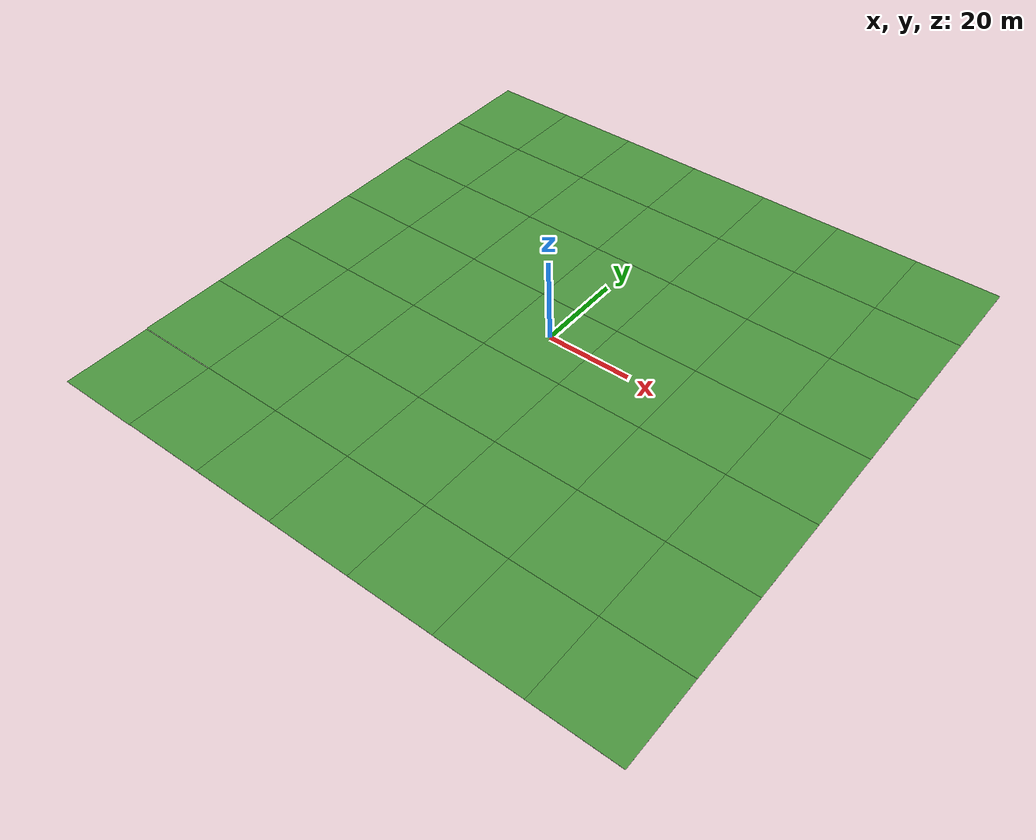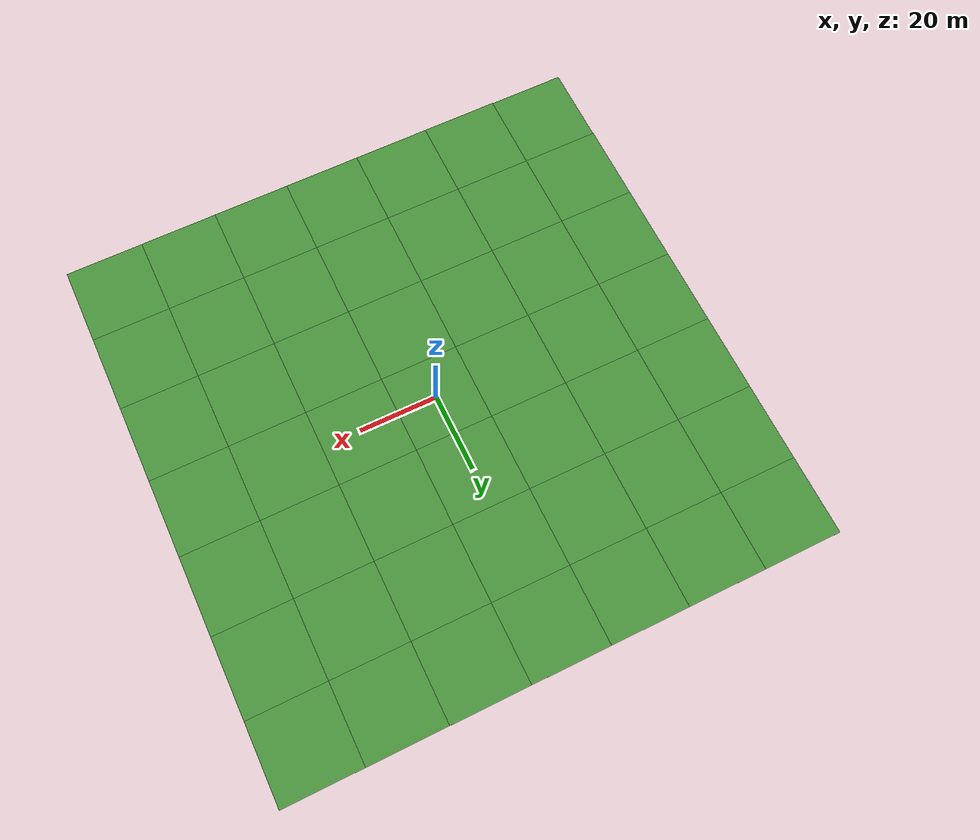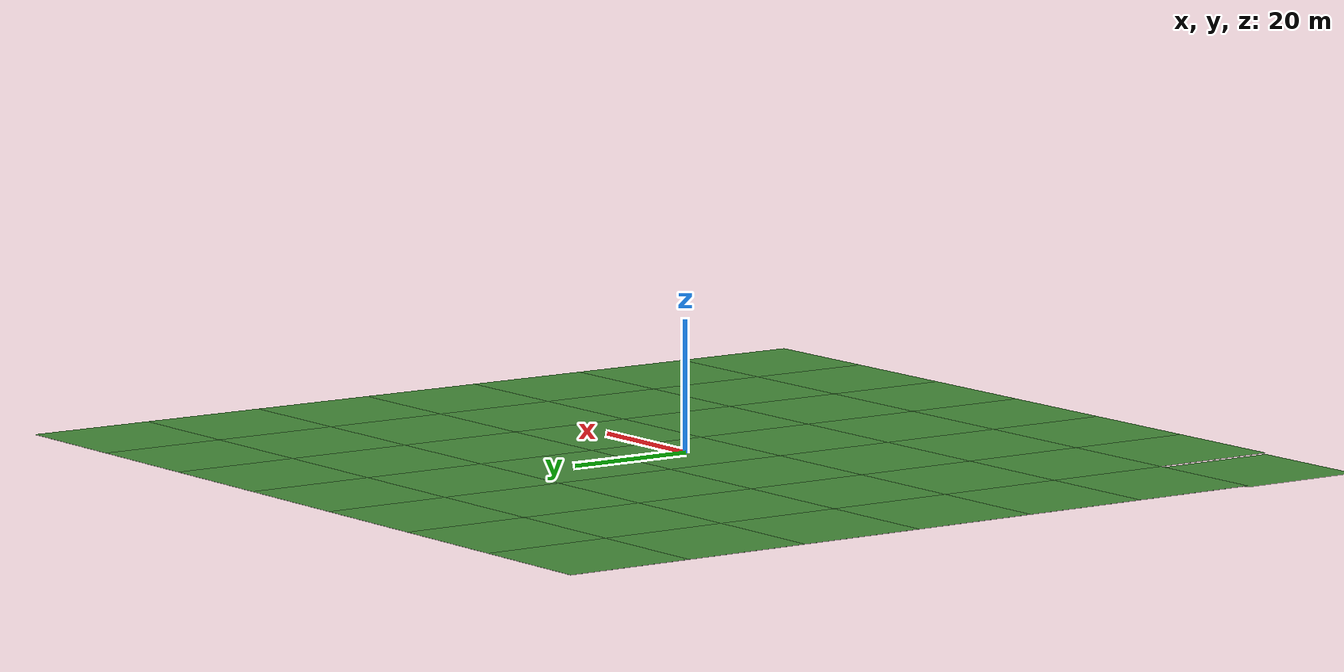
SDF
<?xml version='1.0'?>
<sdf version='1.4'>
  <model name='grass_plane_2'>
    <static>true</static>
    <link name='link'>
      <collision name='collision'>
        <geometry>
          <plane>
            <normal>0 0 1</normal>
            <size>150 150</size>
          </plane>
        </geometry>
        <surface>
          <friction>
            <ode>
              <mu>0.5</mu>
              <mu2>.5</mu2>
            </ode>
          </friction>
        </surface>
      </collision>

      <visual name='visual_00'>
        <pose>-60 -60 0 0 0 0</pose>

        <cast_shadows>false</cast_shadows>
        <geometry>
          <plane>
            <normal>0 0 1</normal>
            <size>20 20</size>
          </plane>
        </geometry>
        <material>
          <script>
            <uri>model://grass_plane_2/materials/scripts</uri>
            <uri>model://grass_plane_2/materials/textures</uri>
            <name>vrc/grass</name>
          </script>
        </material>
      </visual>

      <visual name='visual_01'>
        <pose>-60 -40 0 0 0 0</pose>

        <cast_shadows>false</cast_shadows>
        <geometry>
          <plane>
            <normal>0 0 1</normal>
            <size>20 20</size>
          </plane>
        </geometry>
        <material>
          <script>
            <uri>model://grass_plane_2/materials/scripts</uri>
            <uri>model://grass_plane_2/materials/textures</uri>
            <name>vrc/grass</name>
          </script>
        </material>
      </visual>

      <visual name='visual_02'>
        <pose>-60 -20 0 0 0 0</pose>

        <cast_shadows>false</cast_shadows>
        <geometry>
          <plane>
            <normal>0 0 1</normal>
            <size>20 20</size>
          </plane>
        </geometry>
        <material>
          <script>
            <uri>model://grass_plane_2/materials/scripts</uri>
            <uri>model://grass_plane_2/materials/textures</uri>
            <name>vrc/grass</name>
          </script>
        </material>
      </visual>

      <visual name='visual_03'>
        <pose>-60 0 0 0 0 0</pose>

        <cast_shadows>false</cast_shadows>
        <geometry>
          <plane>
            <normal>0 0 1</normal>
            <size>20 20</size>
          </plane>
        </geometry>
        <material>
          <script>
            <uri>model://grass_plane_2/materials/scripts</uri>
            <uri>model://grass_plane_2/materials/textures</uri>
            <name>vrc/grass</name>
          </script>
        </material>
      </visual>

      <visual name='visual_04'>
        <pose>-60 20 0 0 0 0</pose>

        <cast_shadows>false</cast_shadows>
        <geometry>
          <plane>
            <normal>0 0 1</normal>
            <size>20 20</size>
          </plane>
        </geometry>
        <material>
          <script>
            <uri>model://grass_plane_2/materials/scripts</uri>
            <uri>model://grass_plane_2/materials/textures</uri>
            <name>vrc/grass</name>
          </script>
        </material>
      </visual>

      <visual name='visual_05'>
        <pose>-60 40 0 0 0 0</pose>

        <cast_shadows>false</cast_shadows>
        <geometry>
          <plane>
            <normal>0 0 1</normal>
            <size>20 20</size>
          </plane>
        </geometry>
        <material>
          <script>
            <uri>model://grass_plane_2/materials/scripts</uri>
            <uri>model://grass_plane_2/materials/textures</uri>
            <name>vrc/grass</name>
          </script>
        </material>
      </visual>

      <visual name='visual_06'>
        <pose>-60 60 0 0 0 0</pose>

        <cast_shadows>false</cast_shadows>
        <geometry>
          <plane>
            <normal>0 0 1</normal>
            <size>20 20</size>
          </plane>
        </geometry>
        <material>
          <script>
            <uri>model://grass_plane_2/materials/scripts</uri>
            <uri>model://grass_plane_2/materials/textures</uri>
            <name>vrc/grass</name>
          </script>
        </material>
      </visual>

      <visual name='visual_10'>
        <pose>-40 -60 0 0 0 0</pose>

        <cast_shadows>false</cast_shadows>
        <geometry>
          <plane>
            <normal>0 0 1</normal>
            <size>20 20</size>
          </plane>
        </geometry>
        <material>
          <script>
            <uri>model://grass_plane_2/materials/scripts</uri>
            <uri>model://grass_plane_2/materials/textures</uri>
            <name>vrc/grass</name>
          </script>
        </material>
      </visual>

      <visual name='visual_11'>
        <pose>-40 -40 0 0 0 0</pose>

        <cast_shadows>false</cast_shadows>
        <geometry>
          <plane>
            <normal>0 0 1</normal>
            <size>20 20</size>
          </plane>
        </geometry>
        <material>
          <script>
            <uri>model://grass_plane_2/materials/scripts</uri>
            <uri>model://grass_plane_2/materials/textures</uri>
            <name>vrc/grass</name>
          </script>
        </material>
      </visual>

      <visual name='visual_12'>
        <pose>-40 -20 0 0 0 0</pose>

        <cast_shadows>false</cast_shadows>
        <geometry>
          <plane>
            <normal>0 0 1</normal>
            <size>20 20</size>
          </plane>
        </geometry>
        <material>
          <script>
            <uri>model://grass_plane_2/materials/scripts</uri>
            <uri>model://grass_plane_2/materials/textures</uri>
            <name>vrc/grass</name>
          </script>
        </material>
      </visual>

      <visual name='visual_13'>
        <pose>-40 0 0 0 0 0</pose>

        <cast_shadows>false</cast_shadows>
        <geometry>
          <plane>
            <normal>0 0 1</normal>
            <size>20 20</size>
          </plane>
        </geometry>
        <material>
          <script>
            <uri>model://grass_plane_2/materials/scripts</uri>
            <uri>model://grass_plane_2/materials/textures</uri>
            <name>vrc/grass</name>
          </script>
        </material>
      </visual>

      <visual name='visual_14'>
        <pose>-40 20 0 0 0 0</pose>

        <cast_shadows>false</cast_shadows>
        <geometry>
          <plane>
            <normal>0 0 1</normal>
            <size>20 20</size>
          </plane>
        </geometry>
        <material>
          <script>
            <uri>model://grass_plane_2/materials/scripts</uri>
            <uri>model://grass_plane_2/materials/textures</uri>
            <name>vrc/grass</name>
          </script>
        </material>
      </visual>

      <visual name='visual_15'>
        <pose>-40 40 0 0 0 0</pose>

        <cast_shadows>false</cast_shadows>
        <geometry>
          <plane>
            <normal>0 0 1</normal>
            <size>20 20</size>
          </plane>
        </geometry>
        <material>
          <script>
            <uri>model://grass_plane_2/materials/scripts</uri>
            <uri>model://grass_plane_2/materials/textures</uri>
            <name>vrc/grass</name>
          </script>
        </material>
      </visual>

      <visual name='visual_16'>
        <pose>-40 60 0 0 0 0</pose>

        <cast_shadows>false</cast_shadows>
        <geometry>
          <plane>
            <normal>0 0 1</normal>
            <size>20 20</size>
          </plane>
        </geometry>
        <material>
          <script>
            <uri>model://grass_plane_2/materials/scripts</uri>
            <uri>model://grass_plane_2/materials/textures</uri>
            <name>vrc/grass</name>
          </script>
        </material>
      </visual>

      <visual name='visual_20'>
        <pose>-20 -60 0 0 0 0</pose>

        <cast_shadows>false</cast_shadows>
        <geometry>
          <plane>
            <normal>0 0 1</normal>
            <size>20 20</size>
          </plane>
        </geometry>
        <material>
          <script>
            <uri>model://grass_plane_2/materials/scripts</uri>
            <uri>model://grass_plane_2/materials/textures</uri>
            <name>vrc/grass</name>
          </script>
        </material>
      </visual>

      <visual name='visual_21'>
        <pose>-20 -40 0 0 0 0</pose>

        <cast_shadows>false</cast_shadows>
        <geometry>
          <plane>
            <normal>0 0 1</normal>
            <size>20 20</size>
          </plane>
        </geometry>
        <material>
          <script>
            <uri>model://grass_plane_2/materials/scripts</uri>
            <uri>model://grass_plane_2/materials/textures</uri>
            <name>vrc/grass</name>
          </script>
        </material>
      </visual>

      <visual name='visual_22'>
        <pose>-20 -20 0 0 0 0</pose>

        <cast_shadows>false</cast_shadows>
        <geometry>
          <plane>
            <normal>0 0 1</normal>
            <size>20 20</size>
          </plane>
        </geometry>
        <material>
          <script>
            <uri>model://grass_plane_2/materials/scripts</uri>
            <uri>model://grass_plane_2/materials/textures</uri>
            <name>vrc/grass</name>
          </script>
        </material>
      </visual>

      <visual name='visual_23'>
        <pose>-20 0 0 0 0 0</pose>

        <cast_shadows>false</cast_shadows>
        <geometry>
          <plane>
            <normal>0 0 1</normal>
            <size>20 20</size>
          </plane>
        </geometry>
        <material>
          <script>
            <uri>model://grass_plane_2/materials/scripts</uri>
            <uri>model://grass_plane_2/materials/textures</uri>
            <name>vrc/grass</name>
          </script>
        </material>
      </visual>

      <visual name='visual_24'>
        <pose>-20 20 0 0 0 0</pose>

        <cast_shadows>false</cast_shadows>
        <geometry>
          <plane>
            <normal>0 0 1</normal>
            <size>20 20</size>
          </plane>
        </geometry>
        <material>
          <script>
            <uri>model://grass_plane_2/materials/scripts</uri>
            <uri>model://grass_plane_2/materials/textures</uri>
            <name>vrc/grass</name>
          </script>
        </material>
      </visual>

      <visual name='visual_25'>
        <pose>-20 40 0 0 0 0</pose>

        <cast_shadows>false</cast_shadows>
        <geometry>
          <plane>
            <normal>0 0 1</normal>
            <size>20 20</size>
          </plane>
        </geometry>
        <material>
          <script>
            <uri>model://grass_plane_2/materials/scripts</uri>
            <uri>model://grass_plane_2/materials/textures</uri>
            <name>vrc/grass</name>
          </script>
        </material>
      </visual>

      <visual name='visual_26'>
        <pose>-20 60 0 0 0 0</pose>

        <cast_shadows>false</cast_shadows>
        <geometry>
          <plane>
            <normal>0 0 1</normal>
            <size>20 20</size>
          </plane>
        </geometry>
        <material>
          <script>
            <uri>model://grass_plane_2/materials/scripts</uri>
            <uri>model://grass_plane_2/materials/textures</uri>
            <name>vrc/grass</name>
          </script>
        </material>
      </visual>

      <visual name='visual_40'>
        <pose>0 -60 0 0 0 0</pose>

        <cast_shadows>false</cast_shadows>
        <geometry>
          <plane>
            <normal>0 0 1</normal>
            <size>20 20</size>
          </plane>
        </geometry>
        <material>
          <script>
            <uri>model://grass_plane_2/materials/scripts</uri>
            <uri>model://grass_plane_2/materials/textures</uri>
            <name>vrc/grass</name>
          </script>
        </material>
      </visual>

      <visual name='visual_41'>
        <pose>0 -40 0 0 0 0</pose>

        <cast_shadows>false</cast_shadows>
        <geometry>
          <plane>
            <normal>0 0 1</normal>
            <size>20 20</size>
          </plane>
        </geometry>
        <material>
          <script>
            <uri>model://grass_plane_2/materials/scripts</uri>
            <uri>model://grass_plane_2/materials/textures</uri>
            <name>vrc/grass</name>
          </script>
        </material>
      </visual>

      <visual name='visual_42'>
        <pose>0 -20 0 0 0 0</pose>

        <cast_shadows>false</cast_shadows>
        <geometry>
          <plane>
            <normal>0 0 1</normal>
            <size>20 20</size>
          </plane>
        </geometry>
        <material>
          <script>
            <uri>model://grass_plane_2/materials/scripts</uri>
            <uri>model://grass_plane_2/materials/textures</uri>
            <name>vrc/grass</name>
          </script>
        </material>
      </visual>

      <visual name='visual_43'>
        <pose>0 0 0 0 0 0</pose>

        <cast_shadows>false</cast_shadows>
        <geometry>
          <plane>
            <normal>0 0 1</normal>
            <size>20 20</size>
          </plane>
        </geometry>
        <material>
          <script>
            <uri>model://grass_plane_2/materials/scripts</uri>
            <uri>model://grass_plane_2/materials/textures</uri>
            <name>vrc/grass</name>
          </script>
        </material>
      </visual>

      <visual name='visual_44'>
        <pose>0 20 0 0 0 0</pose>

        <cast_shadows>false</cast_shadows>
        <geometry>
          <plane>
            <normal>0 0 1</normal>
            <size>20 20</size>
          </plane>
        </geometry>
        <material>
          <script>
            <uri>model://grass_plane_2/materials/scripts</uri>
            <uri>model://grass_plane_2/materials/textures</uri>
            <name>vrc/grass</name>
          </script>
        </material>
      </visual>

      <visual name='visual_45'>
        <pose>-0 40 0 0 0 0</pose>

        <cast_shadows>false</cast_shadows>
        <geometry>
          <plane>
            <normal>0 0 1</normal>
            <size>20 20</size>
          </plane>
        </geometry>
        <material>
          <script>
            <uri>model://grass_plane_2/materials/scripts</uri>
            <uri>model://grass_plane_2/materials/textures</uri>
            <name>vrc/grass</name>
          </script>
        </material>
      </visual>

      <visual name='visual_46'>
        <pose>-0 60 0 0 0 0</pose>

        <cast_shadows>false</cast_shadows>
        <geometry>
          <plane>
            <normal>0 0 1</normal>
            <size>20 20</size>
          </plane>
        </geometry>
        <material>
          <script>
            <uri>model://grass_plane_2/materials/scripts</uri>
            <uri>model://grass_plane_2/materials/textures</uri>
            <name>vrc/grass</name>
          </script>
        </material>
      </visual>

      <visual name='visual_50'>
        <pose>20 -60 0 0 0 0</pose>

        <cast_shadows>false</cast_shadows>
        <geometry>
          <plane>
            <normal>0 0 1</normal>
            <size>20 20</size>
          </plane>
        </geometry>
        <material>
          <script>
            <uri>model://grass_plane_2/materials/scripts</uri>
            <uri>model://grass_plane_2/materials/textures</uri>
            <name>vrc/grass</name>
          </script>
        </material>
      </visual>

      <visual name='visual_51'>
        <pose>20 -40 0 0 0 0</pose>

        <cast_shadows>false</cast_shadows>
        <geometry>
          <plane>
            <normal>0 0 1</normal>
            <size>20 20</size>
          </plane>
        </geometry>
        <material>
          <script>
            <uri>model://grass_plane_2/materials/scripts</uri>
            <uri>model://grass_plane_2/materials/textures</uri>
            <name>vrc/grass</name>
          </script>
        </material>
      </visual>

      <visual name='visual_52'>
        <pose>20 -20 0 0 0 0</pose>

        <cast_shadows>false</cast_shadows>
        <geometry>
          <plane>
            <normal>0 0 1</normal>
            <size>20 20</size>
          </plane>
        </geometry>
        <material>
          <script>
            <uri>model://grass_plane_2/materials/scripts</uri>
            <uri>model://grass_plane_2/materials/textures</uri>
            <name>vrc/grass</name>
          </script>
        </material>
      </visual>

      <visual name='visual_53'>
        <pose>20 0 0 0 0 0</pose>

        <cast_shadows>false</cast_shadows>
        <geometry>
          <plane>
            <normal>0 0 1</normal>
            <size>20 20</size>
          </plane>
        </geometry>
        <material>
          <script>
            <uri>model://grass_plane_2/materials/scripts</uri>
            <uri>model://grass_plane_2/materials/textures</uri>
            <name>vrc/grass</name>
          </script>
        </material>
      </visual>

      <visual name='visual_54'>
        <pose>20 20 0 0 0 0</pose>

        <cast_shadows>false</cast_shadows>
        <geometry>
          <plane>
            <normal>0 0 1</normal>
            <size>20 20</size>
          </plane>
        </geometry>
        <material>
          <script>
            <uri>model://grass_plane_2/materials/scripts</uri>
            <uri>model://grass_plane_2/materials/textures</uri>
            <name>vrc/grass</name>
          </script>
        </material>
      </visual>

      <visual name='visual_55'>
        <pose>20 40 0 0 0 0</pose>

        <cast_shadows>false</cast_shadows>
        <geometry>
          <plane>
            <normal>0 0 1</normal>
            <size>20 20</size>
          </plane>
        </geometry>
        <material>
          <script>
            <uri>model://grass_plane_2/materials/scripts</uri>
            <uri>model://grass_plane_2/materials/textures</uri>
            <name>vrc/grass</name>
          </script>
        </material>
      </visual>

      <visual name='visual_56'>
        <pose>20 60 0 0 0 0</pose>

        <cast_shadows>false</cast_shadows>
        <geometry>
          <plane>
            <normal>0 0 1</normal>
            <size>20 20</size>
          </plane>
        </geometry>
        <material>
          <script>
            <uri>model://grass_plane_2/materials/scripts</uri>
            <uri>model://grass_plane_2/materials/textures</uri>
            <name>vrc/grass</name>
          </script>
        </material>
      </visual>

      <visual name='visual_60'>
        <pose>40 -60 0 0 0 0</pose>

        <cast_shadows>false</cast_shadows>
        <geometry>
          <plane>
            <normal>0 0 1</normal>
            <size>20 20</size>
          </plane>
        </geometry>
        <material>
          <script>
            <uri>model://grass_plane_2/materials/scripts</uri>
            <uri>model://grass_plane_2/materials/textures</uri>
            <name>vrc/grass</name>
          </script>
        </material>
      </visual>

      <visual name='visual_61'>
        <pose>40 -40 0 0 0 0</pose>

        <cast_shadows>false</cast_shadows>
        <geometry>
          <plane>
            <normal>0 0 1</normal>
            <size>20 20</size>
          </plane>
        </geometry>
        <material>
          <script>
            <uri>model://grass_plane_2/materials/scripts</uri>
            <uri>model://grass_plane_2/materials/textures</uri>
            <name>vrc/grass</name>
          </script>
        </material>
      </visual>

      <visual name='visual_62'>
        <pose>40 -20 0 0 0 0</pose>

        <cast_shadows>false</cast_shadows>
        <geometry>
          <plane>
            <normal>0 0 1</normal>
            <size>20 20</size>
          </plane>
        </geometry>
        <material>
          <script>
            <uri>model://grass_plane_2/materials/scripts</uri>
            <uri>model://grass_plane_2/materials/textures</uri>
            <name>vrc/grass</name>
          </script>
        </material>
      </visual>

      <visual name='visual_63'>
        <pose>40 0 0 0 0 0</pose>

        <cast_shadows>false</cast_shadows>
        <geometry>
          <plane>
            <normal>0 0 1</normal>
            <size>20 20</size>
          </plane>
        </geometry>
        <material>
          <script>
            <uri>model://grass_plane_2/materials/scripts</uri>
            <uri>model://grass_plane_2/materials/textures</uri>
            <name>vrc/grass</name>
          </script>
        </material>
      </visual>

      <visual name='visual_64'>
        <pose>40 20 0 0 0 0</pose>

        <cast_shadows>false</cast_shadows>
        <geometry>
          <plane>
            <normal>0 0 1</normal>
            <size>20 20</size>
          </plane>
        </geometry>
        <material>
          <script>
            <uri>model://grass_plane_2/materials/scripts</uri>
            <uri>model://grass_plane_2/materials/textures</uri>
            <name>vrc/grass</name>
          </script>
        </material>
      </visual>

      <visual name='visual_65'>
        <pose>40 40 0 0 0 0</pose>

        <cast_shadows>false</cast_shadows>
        <geometry>
          <plane>
            <normal>0 0 1</normal>
            <size>20 20</size>
          </plane>
        </geometry>
        <material>
          <script>
            <uri>model://grass_plane_2/materials/scripts</uri>
            <uri>model://grass_plane_2/materials/textures</uri>
            <name>vrc/grass</name>
          </script>
        </material>
      </visual>

      <visual name='visual_66'>
        <pose>40 60 0 0 0 0</pose>

        <cast_shadows>false</cast_shadows>
        <geometry>
          <plane>
            <normal>0 0 1</normal>
            <size>20 20</size>
          </plane>
        </geometry>
        <material>
          <script>
            <uri>model://grass_plane_2/materials/scripts</uri>
            <uri>model://grass_plane_2/materials/textures</uri>
            <name>vrc/grass</name>
          </script>
        </material>
      </visual>

      <visual name='visual_40'>
        <pose>60 -60 0 0 0 0</pose>

        <cast_shadows>false</cast_shadows>
        <geometry>
          <plane>
            <normal>0 0 1</normal>
            <size>20 20</size>
          </plane>
        </geometry>
        <material>
          <script>
            <uri>model://grass_plane_2/materials/scripts</uri>
            <uri>model://grass_plane_2/materials/textures</uri>
            <name>vrc/grass</name>
          </script>
        </material>
      </visual>

      <visual name='visual_71'>
        <pose>60 -40 0 0 0 0</pose>

        <cast_shadows>false</cast_shadows>
        <geometry>
          <plane>
            <normal>0 0 1</normal>
            <size>20 20</size>
          </plane>
        </geometry>
        <material>
          <script>
            <uri>model://grass_plane_2/materials/scripts</uri>
            <uri>model://grass_plane_2/materials/textures</uri>
            <name>vrc/grass</name>
          </script>
        </material>
      </visual>

      <visual name='visual_72'>
        <pose>60 -20 0 0 0 0</pose>

        <cast_shadows>false</cast_shadows>
        <geometry>
          <plane>
            <normal>0 0 1</normal>
            <size>20 20</size>
          </plane>
        </geometry>
        <material>
          <script>
            <uri>model://grass_plane_2/materials/scripts</uri>
            <uri>model://grass_plane_2/materials/textures</uri>
            <name>vrc/grass</name>
          </script>
        </material>
      </visual>

      <visual name='visual_73'>
        <pose>60 0 0 0 0 0</pose>

        <cast_shadows>false</cast_shadows>
        <geometry>
          <plane>
            <normal>0 0 1</normal>
            <size>20 20</size>
          </plane>
        </geometry>
        <material>
          <script>
            <uri>model://grass_plane_2/materials/scripts</uri>
            <uri>model://grass_plane_2/materials/textures</uri>
            <name>vrc/grass</name>
          </script>
        </material>
      </visual>

      <visual name='visual_74'>
        <pose>60 20 0 0 0 0</pose>

        <cast_shadows>false</cast_shadows>
        <geometry>
          <plane>
            <normal>0 0 1</normal>
            <size>20 20</size>
          </plane>
        </geometry>
        <material>
          <script>
            <uri>model://grass_plane_2/materials/scripts</uri>
            <uri>model://grass_plane_2/materials/textures</uri>
            <name>vrc/grass</name>
          </script>
        </material>
      </visual>

      <visual name='visual_75'>
        <pose>60 40 0 0 0 0</pose>

        <cast_shadows>false</cast_shadows>
        <geometry>
          <plane>
            <normal>0 0 1</normal>
            <size>20 20</size>
          </plane>
        </geometry>
        <material>
          <script>
            <uri>model://grass_plane_2/materials/scripts</uri>
            <uri>model://grass_plane_2/materials/textures</uri>
            <name>vrc/grass</name>
          </script>
        </material>
      </visual>

      <visual name='visual_76'>
        <pose>60 60 0 0 0 0</pose>

        <cast_shadows>false</cast_shadows>
        <geometry>
          <plane>
            <normal>0 0 1</normal>
            <size>20 20</size>
          </plane>
        </geometry>
        <material>
          <script>
            <uri>model://grass_plane_2/materials/scripts</uri>
            <uri>model://grass_plane_2/materials/textures</uri>
            <name>vrc/grass</name>
          </script>
        </material>
      </visual>
    </link>
  </model>
</sdf>
